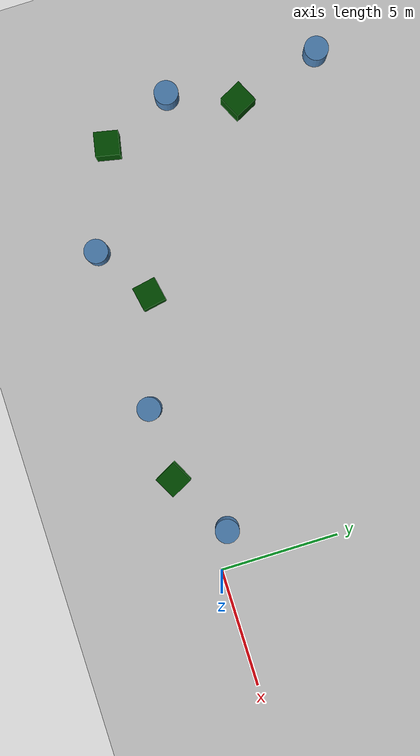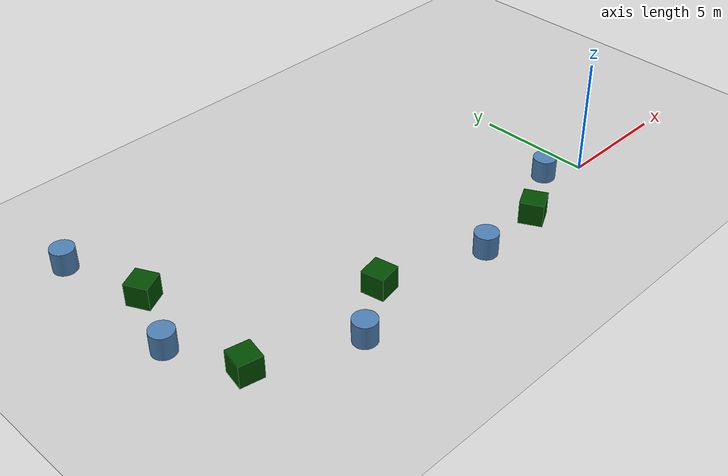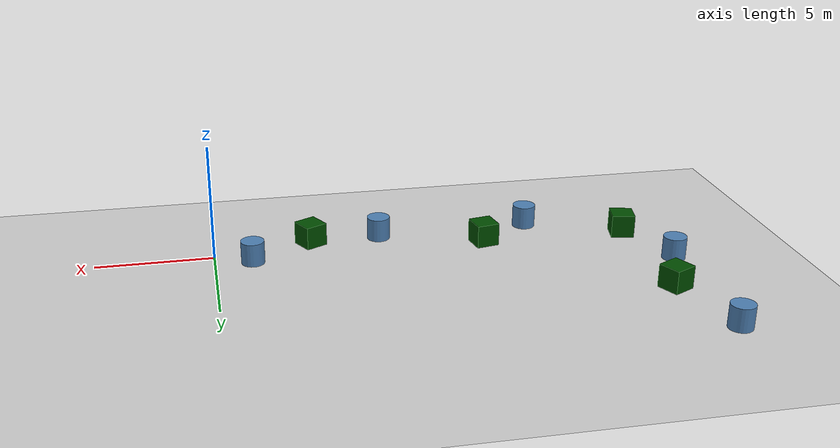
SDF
<sdf version="1.7">
 <world name="default">
  <model name="ground_plane">
   <static>1</static>
   <link name="link">
    <collision name="collision">
     <geometry><plane><normal>0 0 1</normal><size>100 100</size></plane></geometry>
     <surface>
      <contact><collide_bitmask>65535</collide_bitmask></contact>
      <friction><ode><mu>100</mu><mu2>50</mu2></ode></friction>
     </surface>
    </collision>
    <visual name="visual">
     <cast_shadows>0</cast_shadows>
     <geometry><plane><normal>0 0 1</normal><size>100 100</size></plane></geometry>
     <material>
      <script><uri>file://media/materials/scripts/gazebo.material</uri><name>Gazebo/Grey</name></script>
     </material>
    </visual>
   </link>
  </model>
  <model name="unit_cylinder">
   <link name="link">
    <inertial>
     <mass>1</mass>
     <inertia><ixx>0.145833</ixx><ixy>0</ixy><ixz>0</ixz><iyy>0.145833</iyy><iyz>0</iyz><izz>0.125</izz></inertia>
    </inertial>
    <visual name="visual">
     <geometry><cylinder><radius>0.5</radius><length>1</length></cylinder></geometry>
     <material>
      <script><name>Gazebo/Grey</name><uri>file://media/materials/scripts/gazebo.material</uri></script>
      <shader type="pixel"><normal_map>__default__</normal_map></shader>
      <ambient>0.3 0.5 0.7 1</ambient>
      <diffuse>0.7 0.7 0.7 1</diffuse>
      <specular>0.01 0.01 0.01 1</specular>
      <emissive>0 0 0 1</emissive>
     </material>
    </visual>
    <collision name="collision">
     <geometry><cylinder><radius>0.5</radius><length>1</length></cylinder></geometry>
     <surface>
      <friction>
       <ode><mu>1</mu><mu2>1</mu2><fdir1>0 0 0</fdir1><slip1>0</slip1><slip2>0</slip2></ode>
       <torsional>
        <coefficient>1</coefficient>
        <patch_radius>0</patch_radius>
        <surface_radius>0</surface_radius>
        <use_patch_radius>1</use_patch_radius>
        <ode><slip>0</slip></ode>
       </torsional>
      </friction>
      <bounce><restitution_coefficient>0</restitution_coefficient><threshold>1e+06</threshold></bounce>
      <contact>
       <collide_without_contact>0</collide_without_contact>
       <collide_without_contact_bitmask>1</collide_without_contact_bitmask>
       <collide_bitmask>1</collide_bitmask>
       <ode>
        <soft_cfm>0</soft_cfm>
        <soft_erp>0.2</soft_erp>
        <kp>1e+13</kp>
        <kd>1</kd>
        <max_vel>0.01</max_vel>
        <min_depth>0</min_depth>
       </ode>
       <bullet>
        <split_impulse>1</split_impulse>
        <split_impulse_penetration_threshold>-0.01</split_impulse_penetration_threshold>
        <soft_cfm>0</soft_cfm>
        <soft_erp>0.2</soft_erp>
        <kp>1e+13</kp>
        <kd>1</kd>
       </bullet>
      </contact>
     </surface>
    </collision>
   </link>
   <static>0</static>
   <pose>-19.2134 9.945 0.499999 0 -0 0</pose>
  </model>
  <model name="unit_cylinder_1">
   <link name="link">
    <inertial>
     <mass>1</mass>
     <inertia><ixx>0.145833</ixx><ixy>0</ixy><ixz>0</ixz><iyy>0.145833</iyy><iyz>0</iyz><izz>0.125</izz></inertia>
    </inertial>
    <visual name="visual">
     <geometry><cylinder><radius>0.5</radius><length>1</length></cylinder></geometry>
     <material>
      <script><name>Gazebo/Grey</name><uri>file://media/materials/scripts/gazebo.material</uri></script>
      <shader type="pixel"><normal_map>__default__</normal_map></shader>
      <ambient>0.3 0.5 0.7 1</ambient>
      <diffuse>0.7 0.7 0.7 1</diffuse>
      <specular>0.01 0.01 0.01 1</specular>
      <emissive>0 0 0 1</emissive>
     </material>
    </visual>
    <collision name="collision">
     <geometry><cylinder><radius>0.5</radius><length>1</length></cylinder></geometry>
     <surface>
      <friction>
       <ode><mu>1</mu><mu2>1</mu2><fdir1>0 0 0</fdir1><slip1>0</slip1><slip2>0</slip2></ode>
       <torsional>
        <coefficient>1</coefficient>
        <patch_radius>0</patch_radius>
        <surface_radius>0</surface_radius>
        <use_patch_radius>1</use_patch_radius>
        <ode><slip>0</slip></ode>
       </torsional>
      </friction>
      <bounce><restitution_coefficient>0</restitution_coefficient><threshold>1e+06</threshold></bounce>
      <contact>
       <collide_without_contact>0</collide_without_contact>
       <collide_without_contact_bitmask>1</collide_without_contact_bitmask>
       <collide_bitmask>1</collide_bitmask>
       <ode>
        <soft_cfm>0</soft_cfm>
        <soft_erp>0.2</soft_erp>
        <kp>1e+13</kp>
        <kd>1</kd>
        <max_vel>0.01</max_vel>
        <min_depth>0</min_depth>
       </ode>
       <bullet>
        <split_impulse>1</split_impulse>
        <split_impulse_penetration_threshold>-0.01</split_impulse_penetration_threshold>
        <soft_cfm>0</soft_cfm>
        <soft_erp>0.2</soft_erp>
        <kp>1e+13</kp>
        <kd>1</kd>
       </bullet>
      </contact>
     </surface>
    </collision>
   </link>
   <static>0</static>
   <pose>-19.2961 3.59476 0.499999 0 -0 0</pose>
  </model>
  <model name="unit_cylinder_3">
   <link name="link">
    <inertial>
     <mass>1</mass>
     <inertia><ixx>0.145833</ixx><ixy>0</ixy><ixz>0</ixz><iyy>0.145833</iyy><iyz>0</iyz><izz>0.125</izz></inertia>
    </inertial>
    <visual name="visual">
     <geometry><cylinder><radius>0.5</radius><length>1</length></cylinder></geometry>
     <material>
      <script><name>Gazebo/Grey</name><uri>file://media/materials/scripts/gazebo.material</uri></script>
      <shader type="pixel"><normal_map>__default__</normal_map></shader>
      <ambient>0.3 0.5 0.7 1</ambient>
      <diffuse>0.7 0.7 0.7 1</diffuse>
      <specular>0.01 0.01 0.01 1</specular>
      <emissive>0 0 0 1</emissive>
     </material>
    </visual>
    <collision name="collision">
     <geometry><cylinder><radius>0.5</radius><length>1</length></cylinder></geometry>
     <surface>
      <friction>
       <ode><mu>1</mu><mu2>1</mu2><fdir1>0 0 0</fdir1><slip1>0</slip1><slip2>0</slip2></ode>
       <torsional>
        <coefficient>1</coefficient>
        <patch_radius>0</patch_radius>
        <surface_radius>0</surface_radius>
        <use_patch_radius>1</use_patch_radius>
        <ode><slip>0</slip></ode>
       </torsional>
      </friction>
      <bounce><restitution_coefficient>0</restitution_coefficient><threshold>1e+06</threshold></bounce>
      <contact>
       <collide_without_contact>0</collide_without_contact>
       <collide_without_contact_bitmask>1</collide_without_contact_bitmask>
       <collide_bitmask>1</collide_bitmask>
       <ode>
        <soft_cfm>0</soft_cfm>
        <soft_erp>0.2</soft_erp>
        <kp>1e+13</kp>
        <kd>1</kd>
        <max_vel>0.01</max_vel>
        <min_depth>0</min_depth>
       </ode>
       <bullet>
        <split_impulse>1</split_impulse>
        <split_impulse_penetration_threshold>-0.01</split_impulse_penetration_threshold>
        <soft_cfm>0</soft_cfm>
        <soft_erp>0.2</soft_erp>
        <kp>1e+13</kp>
        <kd>1</kd>
       </bullet>
      </contact>
     </surface>
    </collision>
   </link>
   <static>0</static>
   <pose>-13.9993 -1.01468 0.499999 0 -0 0</pose>
  </model>
  <model name="unit_cylinder_5">
   <link name="link">
    <inertial>
     <mass>1</mass>
     <inertia><ixx>0.145833</ixx><ixy>0</ixy><ixz>0</ixz><iyy>0.145833</iyy><iyz>0</iyz><izz>0.125</izz></inertia>
    </inertial>
    <visual name="visual">
     <geometry><cylinder><radius>0.5</radius><length>1</length></cylinder></geometry>
     <material>
      <script><name>Gazebo/Grey</name><uri>file://media/materials/scripts/gazebo.material</uri></script>
      <shader type="pixel"><normal_map>__default__</normal_map></shader>
      <ambient>0.3 0.5 0.7 1</ambient>
      <diffuse>0.7 0.7 0.7 1</diffuse>
      <specular>0.01 0.01 0.01 1</specular>
      <emissive>0 0 0 1</emissive>
     </material>
    </visual>
    <collision name="collision">
     <geometry><cylinder><radius>0.5</radius><length>1</length></cylinder></geometry>
     <surface>
      <friction>
       <ode><mu>1</mu><mu2>1</mu2><fdir1>0 0 0</fdir1><slip1>0</slip1><slip2>0</slip2></ode>
       <torsional>
        <coefficient>1</coefficient>
        <patch_radius>0</patch_radius>
        <surface_radius>0</surface_radius>
        <use_patch_radius>1</use_patch_radius>
        <ode><slip>0</slip></ode>
       </torsional>
      </friction>
      <bounce><restitution_coefficient>0</restitution_coefficient><threshold>1e+06</threshold></bounce>
      <contact>
       <collide_without_contact>0</collide_without_contact>
       <collide_without_contact_bitmask>1</collide_without_contact_bitmask>
       <collide_bitmask>1</collide_bitmask>
       <ode>
        <soft_cfm>0</soft_cfm>
        <soft_erp>0.2</soft_erp>
        <kp>1e+13</kp>
        <kd>1</kd>
        <max_vel>0.01</max_vel>
        <min_depth>0</min_depth>
       </ode>
       <bullet>
        <split_impulse>1</split_impulse>
        <split_impulse_penetration_threshold>-0.01</split_impulse_penetration_threshold>
        <soft_cfm>0</soft_cfm>
        <soft_erp>0.2</soft_erp>
        <kp>1e+13</kp>
        <kd>1</kd>
       </bullet>
      </contact>
     </surface>
    </collision>
   </link>
   <static>0</static>
   <pose>-7.25659 -0.858492 0.499999 0 -0 0</pose>
  </model>
  <model name="unit_cylinder_7">
   <link name="link">
    <inertial>
     <mass>1</mass>
     <inertia><ixx>0.145833</ixx><ixy>0</ixy><ixz>0</ixz><iyy>0.145833</iyy><iyz>0</iyz><izz>0.125</izz></inertia>
    </inertial>
    <visual name="visual">
     <geometry><cylinder><radius>0.5</radius><length>1</length></cylinder></geometry>
     <material>
      <script><name>Gazebo/Grey</name><uri>file://media/materials/scripts/gazebo.material</uri></script>
      <shader type="pixel"><normal_map>__default__</normal_map></shader>
      <ambient>0.3 0.5 0.7 1</ambient>
      <diffuse>0.7 0.7 0.7 1</diffuse>
      <specular>0.01 0.01 0.01 1</specular>
      <emissive>0 0 0 1</emissive>
     </material>
    </visual>
    <collision name="collision">
     <geometry><cylinder><radius>0.5</radius><length>1</length></cylinder></geometry>
     <surface>
      <friction>
       <ode><mu>1</mu><mu2>1</mu2><fdir1>0 0 0</fdir1><slip1>0</slip1><slip2>0</slip2></ode>
       <torsional>
        <coefficient>1</coefficient>
        <patch_radius>0</patch_radius>
        <surface_radius>0</surface_radius>
        <use_patch_radius>1</use_patch_radius>
        <ode><slip>0</slip></ode>
       </torsional>
      </friction>
      <bounce><restitution_coefficient>0</restitution_coefficient><threshold>1e+06</threshold></bounce>
      <contact>
       <collide_without_contact>0</collide_without_contact>
       <collide_without_contact_bitmask>1</collide_without_contact_bitmask>
       <collide_bitmask>1</collide_bitmask>
       <ode>
        <soft_cfm>0</soft_cfm>
        <soft_erp>0.2</soft_erp>
        <kp>1e+13</kp>
        <kd>1</kd>
        <max_vel>0.01</max_vel>
        <min_depth>0</min_depth>
       </ode>
       <bullet>
        <split_impulse>1</split_impulse>
        <split_impulse_penetration_threshold>-0.01</split_impulse_penetration_threshold>
        <soft_cfm>0</soft_cfm>
        <soft_erp>0.2</soft_erp>
        <kp>1e+13</kp>
        <kd>1</kd>
       </bullet>
      </contact>
     </surface>
    </collision>
   </link>
   <static>0</static>
   <pose>-1.59145 0.714298 0.499999 0 -0 0</pose>
  </model>
  <model name="unit_box">
   <link name="link">
    <inertial>
     <mass>1</mass>
     <inertia>
      <ixx>0.166667</ixx>
      <ixy>0</ixy>
      <ixz>0</ixz>
      <iyy>0.166667</iyy>
      <iyz>0</iyz>
      <izz>0.166667</izz>
     </inertia>
    </inertial>
    <visual name="visual">
     <geometry><box><size>1 1 1</size></box></geometry>
     <material>
      <script><name>Gazebo/Grey</name><uri>file://media/materials/scripts/gazebo.material</uri></script>
      <shader type="pixel"><normal_map>__default__</normal_map></shader>
      <ambient>0 0.3 0 0</ambient>
      <diffuse>0.7 0.7 0.7 1</diffuse>
      <specular>0.01 0.01 0.01 1</specular>
      <emissive>0 0 0 1</emissive>
     </material>
    </visual>
    <collision name="collision">
     <geometry><box><size>1 1 1</size></box></geometry>
     <surface>
      <friction>
       <ode><mu>1</mu><mu2>1</mu2><fdir1>0 0 0</fdir1><slip1>0</slip1><slip2>0</slip2></ode>
       <torsional>
        <coefficient>1</coefficient>
        <patch_radius>0</patch_radius>
        <surface_radius>0</surface_radius>
        <use_patch_radius>1</use_patch_radius>
        <ode><slip>0</slip></ode>
       </torsional>
      </friction>
      <bounce><restitution_coefficient>0</restitution_coefficient><threshold>1e+06</threshold></bounce>
      <contact>
       <collide_without_contact>0</collide_without_contact>
       <collide_without_contact_bitmask>1</collide_without_contact_bitmask>
       <collide_bitmask>1</collide_bitmask>
       <ode>
        <soft_cfm>0</soft_cfm>
        <soft_erp>0.2</soft_erp>
        <kp>1e+13</kp>
        <kd>1</kd>
        <max_vel>0.01</max_vel>
        <min_depth>0</min_depth>
       </ode>
       <bullet>
        <split_impulse>1</split_impulse>
        <split_impulse_penetration_threshold>-0.01</split_impulse_penetration_threshold>
        <soft_cfm>0</soft_cfm>
        <soft_erp>0.2</soft_erp>
        <kp>1e+13</kp>
        <kd>1</kd>
       </bullet>
      </contact>
     </surface>
    </collision>
   </link>
   <static>0</static>
   <pose>-18.1905 6.30944 0.5 0 -0 0.465564</pose>
  </model>
  <model name="unit_box_0">
   <link name="link">
    <inertial>
     <mass>1</mass>
     <inertia>
      <ixx>0.166667</ixx>
      <ixy>0</ixy>
      <ixz>0</ixz>
      <iyy>0.166667</iyy>
      <iyz>0</iyz>
      <izz>0.166667</izz>
     </inertia>
    </inertial>
    <visual name="visual">
     <geometry><box><size>1 1 1</size></box></geometry>
     <material>
      <script><name>Gazebo/Grey</name><uri>file://media/materials/scripts/gazebo.material</uri></script>
      <shader type="pixel"><normal_map>__default__</normal_map></shader>
      <ambient>0 0.3 0 0</ambient>
      <diffuse>0.7 0.7 0.7 1</diffuse>
      <specular>0.01 0.01 0.01 1</specular>
      <emissive>0 0 0 1</emissive>
     </material>
    </visual>
    <collision name="collision">
     <geometry><box><size>1 1 1</size></box></geometry>
     <surface>
      <friction>
       <ode><mu>1</mu><mu2>1</mu2><fdir1>0 0 0</fdir1><slip1>0</slip1><slip2>0</slip2></ode>
       <torsional>
        <coefficient>1</coefficient>
        <patch_radius>0</patch_radius>
        <surface_radius>0</surface_radius>
        <use_patch_radius>1</use_patch_radius>
        <ode><slip>0</slip></ode>
       </torsional>
      </friction>
      <bounce><restitution_coefficient>0</restitution_coefficient><threshold>1e+06</threshold></bounce>
      <contact>
       <collide_without_contact>0</collide_without_contact>
       <collide_without_contact_bitmask>1</collide_without_contact_bitmask>
       <collide_bitmask>1</collide_bitmask>
       <ode>
        <soft_cfm>0</soft_cfm>
        <soft_erp>0.2</soft_erp>
        <kp>1e+13</kp>
        <kd>1</kd>
        <max_vel>0.01</max_vel>
        <min_depth>0</min_depth>
       </ode>
       <bullet>
        <split_impulse>1</split_impulse>
        <split_impulse_penetration_threshold>-0.01</split_impulse_penetration_threshold>
        <soft_cfm>0</soft_cfm>
        <soft_erp>0.2</soft_erp>
        <kp>1e+13</kp>
        <kd>1</kd>
       </bullet>
      </contact>
     </surface>
    </collision>
   </link>
   <static>0</static>
   <pose>-18.0433 0.685838 0.499996 -0 9e-06 -0.201911</pose>
  </model>
  <model name="unit_box_1">
   <link name="link">
    <inertial>
     <mass>1</mass>
     <inertia>
      <ixx>0.166667</ixx>
      <ixy>0</ixy>
      <ixz>0</ixz>
      <iyy>0.166667</iyy>
      <iyz>0</iyz>
      <izz>0.166667</izz>
     </inertia>
    </inertial>
    <visual name="visual">
     <geometry><box><size>1 1 1</size></box></geometry>
     <material>
      <script><name>Gazebo/Grey</name><uri>file://media/materials/scripts/gazebo.material</uri></script>
      <shader type="pixel"><normal_map>__default__</normal_map></shader>
      <ambient>0 0.3 0 0</ambient>
      <diffuse>0.7 0.7 0.7 1</diffuse>
      <specular>0.01 0.01 0.01 1</specular>
      <emissive>0 0 0 1</emissive>
     </material>
    </visual>
    <collision name="collision">
     <geometry><box><size>1 1 1</size></box></geometry>
     <surface>
      <friction>
       <ode><mu>1</mu><mu2>1</mu2><fdir1>0 0 0</fdir1><slip1>0</slip1><slip2>0</slip2></ode>
       <torsional>
        <coefficient>1</coefficient>
        <patch_radius>0</patch_radius>
        <surface_radius>0</surface_radius>
        <use_patch_radius>1</use_patch_radius>
        <ode><slip>0</slip></ode>
       </torsional>
      </friction>
      <bounce><restitution_coefficient>0</restitution_coefficient><threshold>1e+06</threshold></bounce>
      <contact>
       <collide_without_contact>0</collide_without_contact>
       <collide_without_contact_bitmask>1</collide_without_contact_bitmask>
       <collide_bitmask>1</collide_bitmask>
       <ode>
        <soft_cfm>0</soft_cfm>
        <soft_erp>0.2</soft_erp>
        <kp>1e+13</kp>
        <kd>1</kd>
        <max_vel>0.01</max_vel>
        <min_depth>0</min_depth>
       </ode>
       <bullet>
        <split_impulse>1</split_impulse>
        <split_impulse_penetration_threshold>-0.01</split_impulse_penetration_threshold>
        <soft_cfm>0</soft_cfm>
        <soft_erp>0.2</soft_erp>
        <kp>1e+13</kp>
        <kd>1</kd>
       </bullet>
      </contact>
     </surface>
    </collision>
   </link>
   <static>0</static>
   <pose>-11.7151 0.527395 0.499999 2e-06 -0 0.18762</pose>
  </model>
  <model name="unit_box_2">
   <link name="link">
    <inertial>
     <mass>1</mass>
     <inertia>
      <ixx>0.166667</ixx>
      <ixy>0</ixy>
      <ixz>0</ixz>
      <iyy>0.166667</iyy>
      <iyz>0</iyz>
      <izz>0.166667</izz>
     </inertia>
    </inertial>
    <visual name="visual">
     <geometry><box><size>1 1 1</size></box></geometry>
     <material>
      <script><name>Gazebo/Grey</name><uri>file://media/materials/scripts/gazebo.material</uri></script>
      <shader type="pixel"><normal_map>__default__</normal_map></shader>
      <ambient>0 0.3 0 0</ambient>
      <diffuse>0.7 0.7 0.7 1</diffuse>
      <specular>0.01 0.01 0.01 1</specular>
      <emissive>0 0 0 1</emissive>
     </material>
    </visual>
    <collision name="collision">
     <geometry><box><size>1 1 1</size></box></geometry>
     <surface>
      <friction>
       <ode><mu>1</mu><mu2>1</mu2><fdir1>0 0 0</fdir1><slip1>0</slip1><slip2>0</slip2></ode>
       <torsional>
        <coefficient>1</coefficient>
        <patch_radius>0</patch_radius>
        <surface_radius>0</surface_radius>
        <use_patch_radius>1</use_patch_radius>
        <ode><slip>0</slip></ode>
       </torsional>
      </friction>
      <bounce><restitution_coefficient>0</restitution_coefficient><threshold>1e+06</threshold></bounce>
      <contact>
       <collide_without_contact>0</collide_without_contact>
       <collide_without_contact_bitmask>1</collide_without_contact_bitmask>
       <collide_bitmask>1</collide_bitmask>
       <ode>
        <soft_cfm>0</soft_cfm>
        <soft_erp>0.2</soft_erp>
        <kp>1e+13</kp>
        <kd>1</kd>
        <max_vel>0.01</max_vel>
        <min_depth>0</min_depth>
       </ode>
       <bullet>
        <split_impulse>1</split_impulse>
        <split_impulse_penetration_threshold>-0.01</split_impulse_penetration_threshold>
        <soft_cfm>0</soft_cfm>
        <soft_erp>0.2</soft_erp>
        <kp>1e+13</kp>
        <kd>1</kd>
       </bullet>
      </contact>
     </surface>
    </collision>
   </link>
   <static>0</static>
   <pose>-4.22396 -0.764136 0.499999 5e-06 -3e-06 0.480028</pose>
  </model>
 </world>
</sdf>
